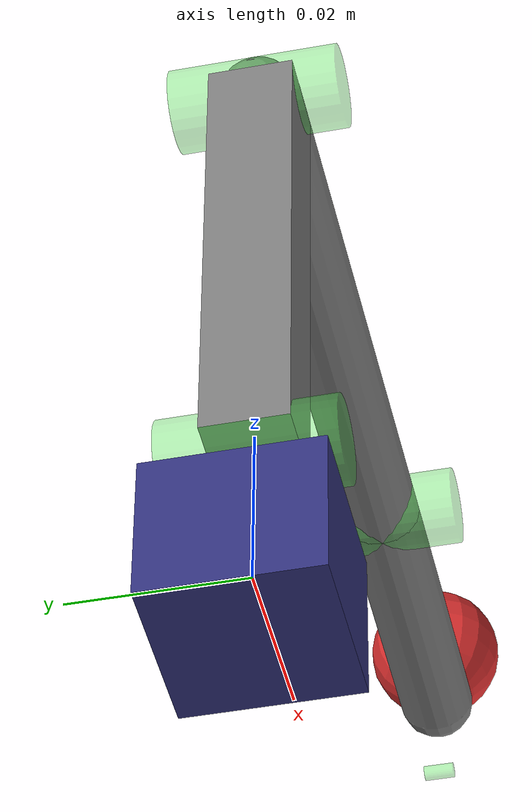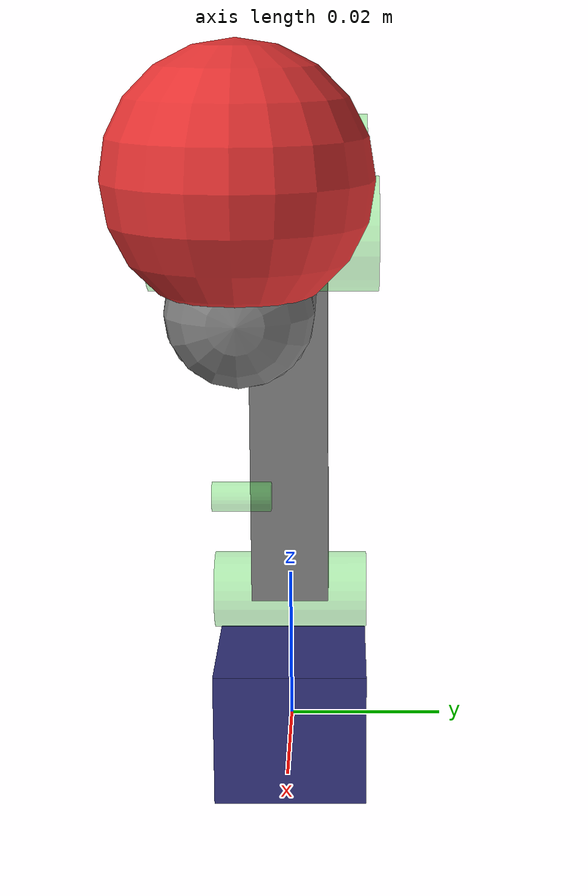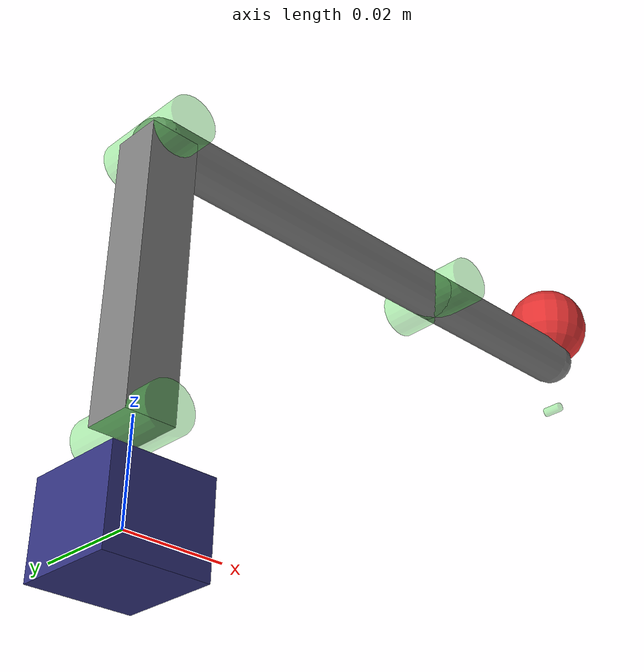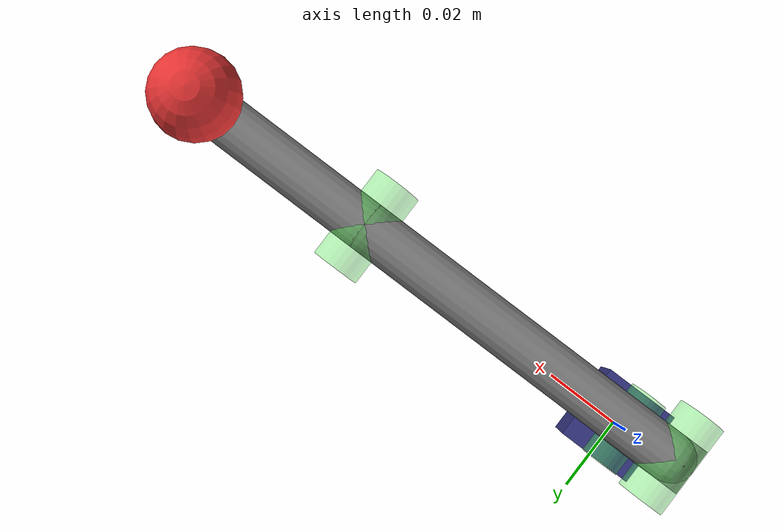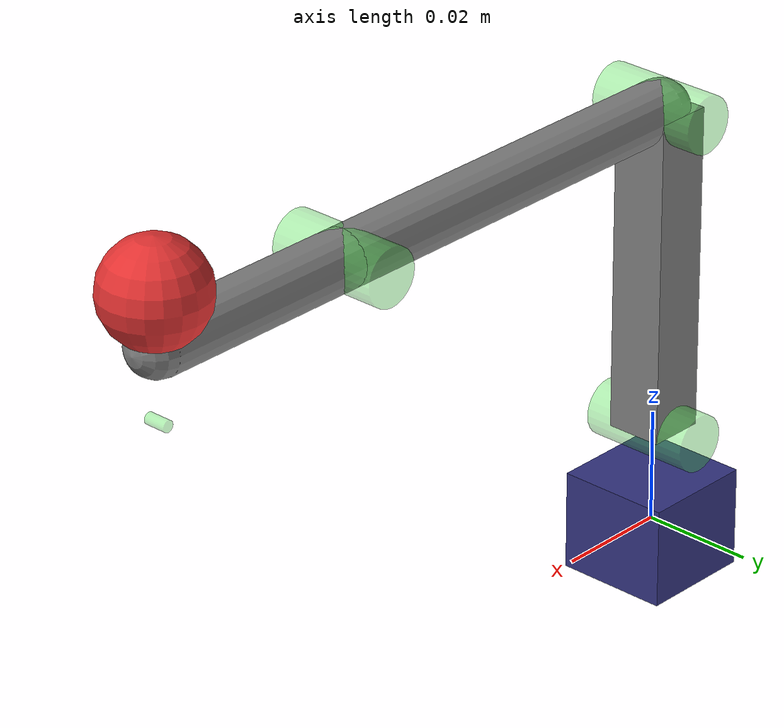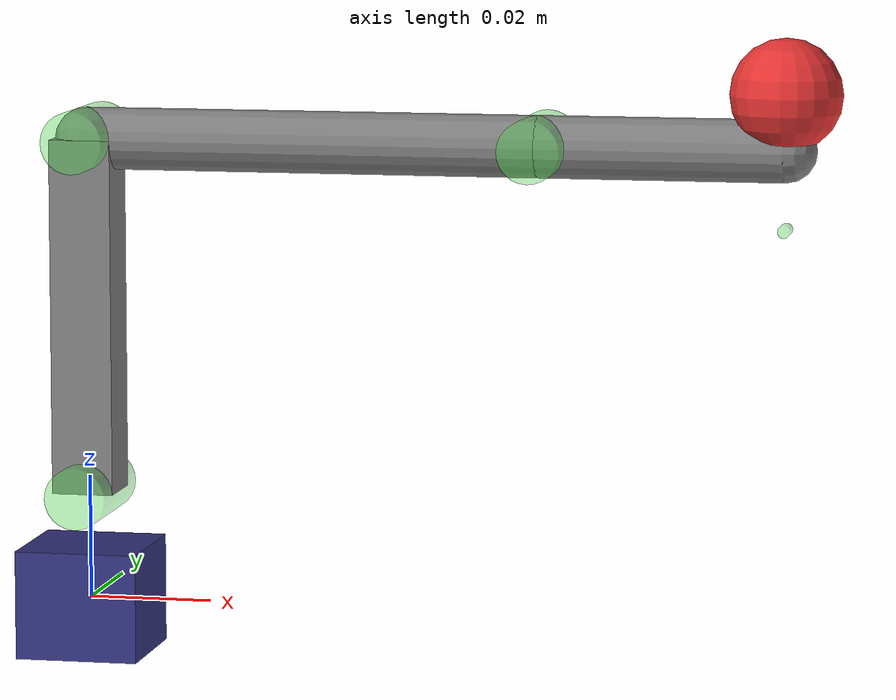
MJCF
<mujoco model="armDOF_0">
	<compiler angle="degree" coordinate="local" inertiafromgeom="true" />
	<default>
        <joint axis="0 1 0" type="hinge" />
	</default>
	<option gravity="0 0 0" integrator="RK4" timestep="0.02" />
	<size nstack="3000" />
	<worldbody>
            <body name="base" pos="0 0 -0.00882">
                <geom density="5000" pos="0 0 0.00882" rgba=".2 .2 .5 1" size="0.01 0.01 0.00882" type="box"/>
                <joint axis="0 0 1" name="j0" pos="0 0 0.00882" range="-50 50" damping="0.001"/>

                <body name="DOF1" pos="0 0 0.0265">
                    <geom pos="0 0 0.02875" size="0.005 0.005 0.02875" type="box"/>
                    <geom fromto="0 0.01 0  0 -0.01 0" name="g1" rgba=".3 .9 .3 .4" size="0.005" type="cylinder"/>
                    <joint name='j1' pos="0 0 0" range="-50 50" damping="0.001" />

                    <body name="DOF2" pos="0 0 0.0575">
                        <geom fromto="0 0 0  0.07375 0 0" size="0.005" type="capsule" />
                        <geom fromto="0 0.01 0  0 -0.01 0" name="g2" rgba=".3 .9 .3 .4" size="0.005" type="cylinder"/>
                        <joint name='j2' pos="0 0 0" range="-50 50" damping="0.001"/>

                        <body name="wrist" pos="0.07375 0 0">
                        <geom fromto="0 0 0  0.0394 0 0" size="0.005" type="capsule" />
                        <geom fromto="0 0.01 0  0 -0.01 0" name="g3" rgba=".3 .9 .3 .4" size="0.005" type="cylinder"/>

                            <body name="grip" pos="0.0394 0 -0.0125">
                                <geom fromto="0 0.002 0 0 -0.002 0" rgba=".3 .9 .3 .4" size="0.001" type="cylinder" />
                            </body>
                        </body>
                    </body>
                </body>
            </body>
        <!-- Definition of the object as a body in the world of the simulation. The joints are sliders so that the object can appear anywhere in a defined box. -->
        <body name="object" pos="0.11315 0 0.084">
            <joint armature="0" axis="1 0 0" damping="0" limited="true" name="target_x" pos="0 0 0" range=".084 .16" ref="0.11315" stiffness="0" type="slide"/>
            <joint armature="0" axis="0 1 0" damping="0" limited="true" name="target_y" pos="0 0 0" range="-.05 .05" ref="0" stiffness="0" type="slide"/>
            <joint armature="0" axis="0 0 1" damping="0" limited="true" name="target_z" pos="0 0 0" range="0 0.1" ref="0.084" stiffness="0" type="slide"/>
            <geom conaffinity="0" contype="0" name="target" pos="0 0 0" rgba="0.9 0.2 0.2 1" size=".009" type="sphere"/>
        </body>

	</worldbody>

    <!-- Actuators define which joints can be moved with an action. The number of actuators also define the size of the action space. -->
	<actuator>
            <motor name="M0" ctrllimited="true" ctrlrange="-1 1" gear="0.01" joint="j0" />
	    <motor name="M1" ctrllimited="true" ctrlrange="-1 1" gear="0.01" joint='j1' />
            <motor name="M2" ctrllimited="true" ctrlrange="-1 1" gear="0.01" joint='j2' />
        </actuator>
</mujoco>
